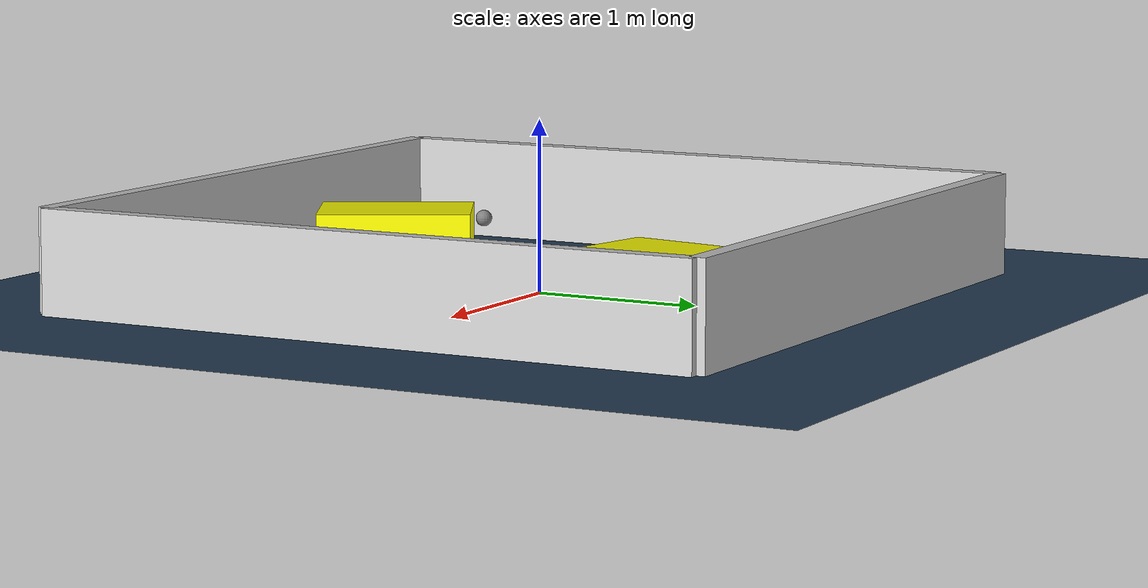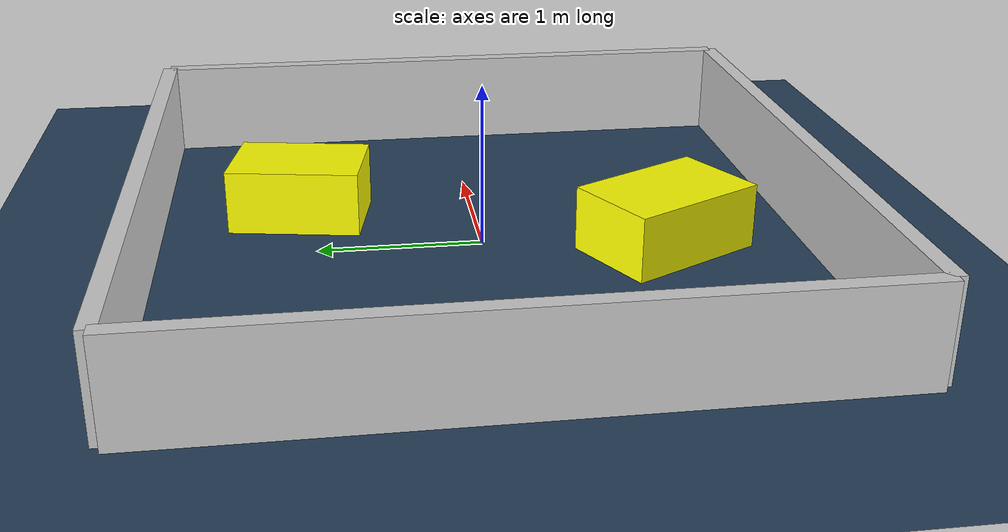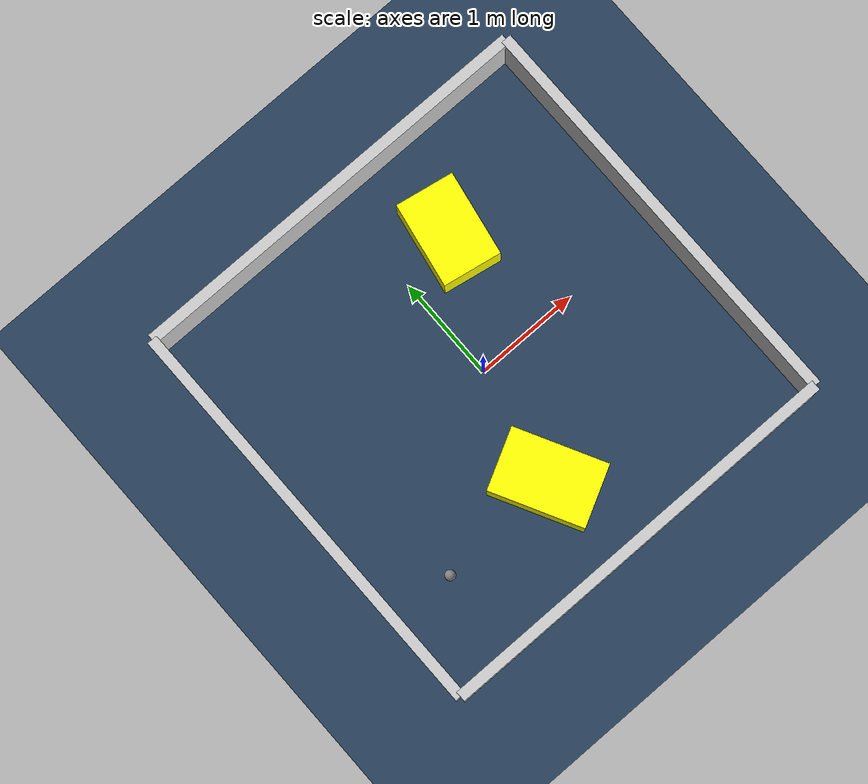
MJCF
<?xml version="1.0" ?>
<mujoco model="generated_environment">
  <option timestep="0.01" integrator="RK4" cone="elliptic"/>
  <default>
    <geom density="1"/>
  </default>
  <asset>
    <texture builtin="gradient" height="3072" rgb1="0.3 0.5 0.7" rgb2="0 0 0" type="skybox" width="512"/>
    <texture builtin="checker" height="300" mark="edge" markrgb="0.8 0.8 0.8" name="groundplane" rgb1="0.2 0.3 0.4" rgb2="0.1 0.2 0.3" type="2d" width="300"/>
    <material name="groundplane" reflectance="0.2" texrepeat="5 5" texture="groundplane" texuniform="true"/>
    <material name="robot" rgba="0.0 1.0 0.0 1"/>
  </asset>
  <worldbody>
    <light dir="0 0 -1" directional="true" pos="0 0 1.5"/>
    <geom condim="4" friction="1.0 0.005 0.001" material="groundplane" name="floor" size="0 0 0.05" type="plane"/>
    <body name="walls">
      <geom name="wall_1" condim="4" pos="-2.0 0.0 0.3" rgba="0.800000011920929 0.800000011920929 0.800000011920929 1.0" size="0.05 2.0 0.3" type="box"/>
      <geom name="wall_2" condim="4" pos="2.0 0.0 0.3" rgba="0.800000011920929 0.800000011920929 0.800000011920929 1.0" size="0.05 2.0 0.3" type="box"/>
      <geom name="wall_3" condim="4" pos="0.0 -2.0 0.3" rgba="0.800000011920929 0.800000011920929 0.800000011920929 1.0" size="2.0 0.05 0.3" type="box"/>
      <geom name="wall_4" condim="4" pos="0.0 2.0 0.3" rgba="0.800000011920929 0.800000011920929 0.800000011920929 1.0" size="2.0 0.05 0.3" type="box"/>
    </body>
    <body name="robot">
      <joint name="joint_x" type="slide" pos="0 0 0" axis="1 0 0"/>
      <joint name="joint_y" type="slide" pos="0 0 0" axis="0 1 0"/>
      <geom name="robot" type="sphere" pos="-1.3870026204007935 -1.157879944138748 0.2" size="0.05" mass="5." friction="1.0 0.005 0.0001" condim="4"/>
      <site name="sensor_ball"/>
    </body>
    <body name="obstacle_1_movable">
      <geom name="obstacle_1_movable" condim="4" pos="-0.21399830868915481 -1.0870086654417794 0.2" euler="0 0 207.81726209185612" friction="1.0 0.005 0.001" rgba="1 1 0 1" size="0.2988413216234359 0.4509482393260866 0.2" type="box" mass="0.1"/>
      <joint type="free"/>
    </body>
    <body name="obstacle_2_movable">
      <geom name="obstacle_2_movable" condim="4" pos="0.5514805373945659 1.0956374033916751 0.2" euler="0 0 169.75261378240228" friction="1.0 0.005 0.001" rgba="1 1 0 1" size="0.2822209669140166 0.410866918817713 0.2" type="box" mass="0.1"/>
      <joint type="free"/>
    </body>
  </worldbody>
  <actuator>
    <motor name="actuator_x" joint="joint_x" gear="1" ctrlrange="-1 1"/>
    <motor name="actuator_y" joint="joint_y" gear="1" ctrlrange="-1 1"/>
  </actuator>
</mujoco>
